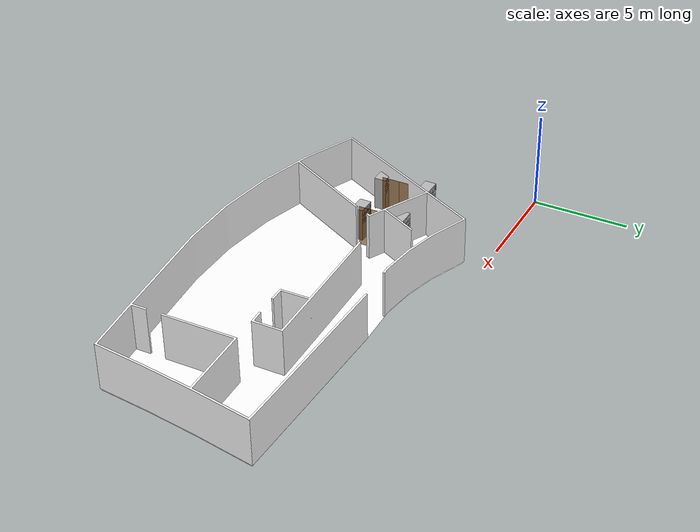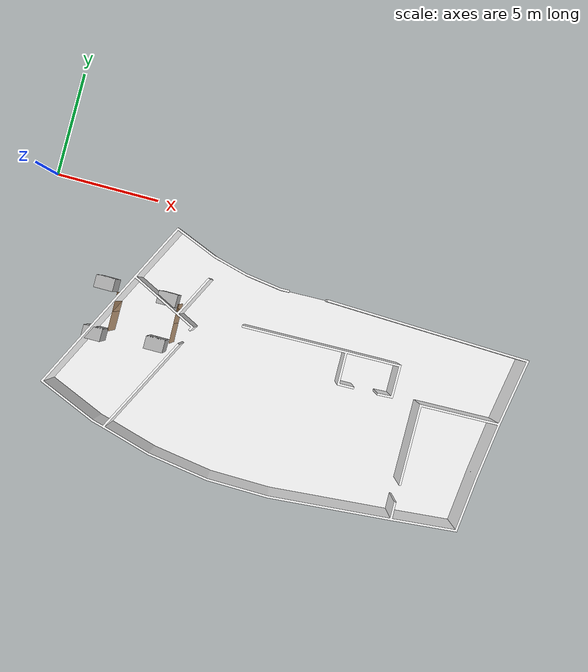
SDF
<sdf version="1.7">
  <world name="sim_world">
    <physics name="10ms" type="ode">
      <max_step_size>0.01</max_step_size>
      <real_time_factor>1.0</real_time_factor>
    </physics>
    <plugin filename="libgz-sim-physics-system.so" name="gz::sim::systems::Physics">
    </plugin>
    <plugin filename="libgz-sim-user-commands-system.so" name="gz::sim::systems::UserCommands">
    </plugin>
    <plugin filename="libgz-sim-scene-broadcaster-system.so" name="gz::sim::systems::SceneBroadcaster">
    </plugin>
    <plugin filename="libdoor.so" name="door">
    </plugin>
    <plugin filename="liblift.so" name="lift">
    </plugin>
    <scene>
      <ambient>1 1 1</ambient>
      <background>0.8 0.8 0.8</background>
      <grid>false</grid>
    </scene>
    <gui fullscreen="0">
      <window>
        <width>1000</width>
        <height>845</height>
        <style material_theme="Light" material_primary="DeepOrange" material_accent="LightBlue" toolbar_color_light="#f3f3f3" toolbar_text_color_light="#111111" toolbar_color_dark="#414141" toolbar_text_color_dark="#f3f3f3" plugin_toolbar_color_light="#bbdefb" plugin_toolbar_text_color_light="#111111" plugin_toolbar_color_dark="#607d8b" plugin_toolbar_text_color_dark="#eeeeee" />
        <menus>
          <drawer default="false">
          </drawer>
        </menus>
      </window>
      <plugin filename="MinimalScene" name="3D View">
        <gz-gui>
          <title>3D View</title>
          <property type="bool" key="showTitleBar">false</property>
          <property type="string" key="state">docked</property>
        </gz-gui>
        <engine>ogre2</engine>
        <scene>scene</scene>
        <ambient_light>0.4 0.4 0.4</ambient_light>
        <background_color>0.8 0.8 0.8</background_color>
        <camera_pose>6.171511976051526 -25.667290171069755 10 0 0.6 1.57</camera_pose>
      </plugin>
      <plugin filename="EntityContextMenuPlugin" name="Entity context menu">
        <gz-gui>
          <property key="state" type="string">floating</property>
          <property key="width" type="double">5</property>
          <property key="height" type="double">5</property>
          <property key="showTitleBar" type="bool">false</property>
        </gz-gui>
      </plugin>
      <plugin filename="GzSceneManager" name="Scene Manager">
        <gz-gui>
          <property key="resizable" type="bool">false</property>
          <property key="width" type="double">5</property>
          <property key="height" type="double">5</property>
          <property key="state" type="string">floating</property>
          <property key="showTitleBar" type="bool">false</property>
        </gz-gui>
      </plugin>
      <plugin filename="InteractiveViewControl" name="Interactive view control">
        <gz-gui>
          <property key="resizable" type="bool">false</property>
          <property key="width" type="double">5</property>
          <property key="height" type="double">5</property>
          <property key="state" type="string">floating</property>
          <property key="showTitleBar" type="bool">false</property>
        </gz-gui>
      </plugin>
      <plugin filename="CameraTracking" name="Camera Tracking">
        <gz-gui>
          <property key="resizable" type="bool">false</property>
          <property key="width" type="double">5</property>
          <property key="height" type="double">5</property>
          <property key="state" type="string">floating</property>
          <property key="showTitleBar" type="bool">false</property>
        </gz-gui>
      </plugin>
      <plugin filename="MarkerManager" name="Marker manager">
        <gz-gui>
          <property key="resizable" type="bool">false</property>
          <property key="width" type="double">5</property>
          <property key="height" type="double">5</property>
          <property key="state" type="string">floating</property>
          <property key="showTitleBar" type="bool">false</property>
        </gz-gui>
      </plugin>
      <plugin filename="SelectEntities" name="Select Entities">
        <gz-gui>
          <property key="resizable" type="bool">false</property>
          <property key="width" type="double">5</property>
          <property key="height" type="double">5</property>
          <property key="state" type="string">floating</property>
          <property key="showTitleBar" type="bool">false</property>
        </gz-gui>
      </plugin>
      <plugin filename="Spawn" name="Spawn Entities">
        <gz-gui>
          <property key="resizable" type="bool">false</property>
          <property key="width" type="double">5</property>
          <property key="height" type="double">5</property>
          <property key="state" type="string">floating</property>
          <property key="showTitleBar" type="bool">false</property>
        </gz-gui>
      </plugin>
      <plugin filename="VisualizationCapabilities" name="Visualization Capabilities">
        <gz-gui>
          <property key="resizable" type="bool">false</property>
          <property key="width" type="double">5</property>
          <property key="height" type="double">5</property>
          <property key="state" type="string">floating</property>
          <property key="showTitleBar" type="bool">false</property>
        </gz-gui>
      </plugin>
      <plugin filename="WorldControl" name="World control">
        <gz-gui>
          <title>World control</title>
          <property type="bool" key="showTitleBar">false</property>
          <property type="bool" key="resizable">false</property>
          <property type="double" key="height">72</property>
          <property type="double" key="z">1</property>
          <property type="string" key="state">floating</property>
          <anchors target="3D View">
            <line own="left" target="left" />
            <line own="bottom" target="bottom" />
          </anchors>
        </gz-gui>
        <play_pause>true</play_pause>
        <step>true</step>
        <start_paused>true</start_paused>
        <use_event>true</use_event>
      </plugin>
      <plugin filename="WorldStats" name="World stats">
        <gz-gui>
          <title>World stats</title>
          <property type="bool" key="showTitleBar">false</property>
          <property type="bool" key="resizable">false</property>
          <property type="double" key="height">110</property>
          <property type="double" key="width">290</property>
          <property type="double" key="z">1</property>
          <property type="string" key="state">floating</property>
          <anchors target="3D View">
            <line own="right" target="right" />
            <line own="bottom" target="bottom" />
          </anchors>
        </gz-gui>
        <sim_time>true</sim_time>
        <real_time>true</real_time>
        <real_time_factor>true</real_time_factor>
        <iterations>true</iterations>
      </plugin>
      <plugin filename="Shapes" name="Shapes">
        <gz-gui>
          <property key="resizable" type="bool">false</property>
          <property key="x" type="double">0</property>
          <property key="y" type="double">0</property>
          <property key="width" type="double">250</property>
          <property key="height" type="double">50</property>
          <property key="state" type="string">floating</property>
          <property key="showTitleBar" type="bool">false</property>
          <property key="cardBackground" type="string">#666666</property>
        </gz-gui>
      </plugin>
      <plugin filename="Lights" name="Lights">
        <gz-gui>
          <property key="resizable" type="bool">false</property>
          <property key="x" type="double">250</property>
          <property key="y" type="double">0</property>
          <property key="width" type="double">150</property>
          <property key="height" type="double">50</property>
          <property key="state" type="string">floating</property>
          <property key="showTitleBar" type="bool">false</property>
          <property key="cardBackground" type="string">#666666</property>
        </gz-gui>
      </plugin>
      <plugin filename="TransformControl" name="Transform control">
        <gz-gui>
          <property key="resizable" type="bool">false</property>
          <property key="x" type="double">0</property>
          <property key="y" type="double">50</property>
          <property key="width" type="double">250</property>
          <property key="height" type="double">50</property>
          <property key="state" type="string">floating</property>
          <property key="showTitleBar" type="bool">false</property>
          <property key="cardBackground" type="string">#777777</property>
        </gz-gui>
      </plugin>
      <plugin filename="Screenshot" name="Screenshot">
        <gz-gui>
          <property key="resizable" type="bool">false</property>
          <property key="x" type="double">250</property>
          <property key="y" type="double">50</property>
          <property key="width" type="double">50</property>
          <property key="height" type="double">50</property>
          <property key="state" type="string">floating</property>
          <property key="showTitleBar" type="bool">false</property>
          <property key="cardBackground" type="string">#777777</property>
        </gz-gui>
      </plugin>
      <plugin filename="CopyPaste" name="CopyPaste">
        <gz-gui>
          <property key="resizable" type="bool">false</property>
          <property key="x" type="double">300</property>
          <property key="y" type="double">50</property>
          <property key="width" type="double">100</property>
          <property key="height" type="double">50</property>
          <property key="state" type="string">floating</property>
          <property key="showTitleBar" type="bool">false</property>
          <property key="cardBackground" type="string">#777777</property>
        </gz-gui>
      </plugin>
      <plugin filename="ComponentInspector" name="Component inspector">
        <gz-gui>
          <property type="bool" key="showTitleBar">false</property>
          <property type="string" key="state">docked</property>
        </gz-gui>
      </plugin>
      <plugin filename="EntityTree" name="Entity tree">
        <gz-gui>
          <property type="bool" key="showTitleBar">false</property>
          <property type="string" key="state">docked</property>
        </gz-gui>
      </plugin>
      <plugin filename="toggle_charging" name="toggle_charging" />
      <plugin name="toggle_floors" filename="toggle_floors">
        <floor name="L1" model_name="building_L1">
          <model name="VendingMachine" />
          <model name="VendingMachine_2" />
          <model name="VendingMachine_3" />
          <model name="VendingMachine_4" />
          <model name="negative_motion" />
          <model name="positive_motion" />
        </floor>
      </plugin>
    </gui>
    <light type="directional" name="sun">
      <cast_shadows>true</cast_shadows>
      <pose>0 0 10 0 0 0</pose>
      <diffuse>1 1 1 1</diffuse>
      <specular>0.2 0.2 0.2 1</specular>
      <attenuation>
        <range>1000</range>
        <constant>0.09</constant>
        <linear>0.001</linear>
        <quadratic>0.001</quadratic>
      </attenuation>
      <direction>-0.5 0.1 -0.9</direction>
    </light>
    <include>
      <name>VendingMachine</name>
      <uri>model://VendingMachine</uri>
      <pose>3.791648278030986 -4.445018096578708 0.0 0 0 -3.1416</pose>
      <static>True</static>
    </include>
    <include>
      <name>VendingMachine_2</name>
      <uri>model://VendingMachine</uri>
      <pose>3.807879180668895 -6.857222020080024 0.0 0 0 -3.1416</pose>
      <static>True</static>
    </include>
    <include>
      <name>VendingMachine_3</name>
      <uri>model://VendingMachine</uri>
      <pose>6.801781633541549 -4.414379988228498 0.0 0 0 -3.1416</pose>
      <static>True</static>
    </include>
    <include>
      <name>VendingMachine_4</name>
      <uri>model://VendingMachine</uri>
      <pose>6.7692590383682125 -6.61959431067334 0.0 0 0 -3.1416</pose>
      <static>True</static>
    </include>
    <model name="negative_motion">
      <pose>7.442415968558777 -5.432580376744042 0.0 0 0 1.596654026471199</pose>
      <link name="right">
        <pose>0.46965257697674084 0 1.11 0 0 0</pose>
        <visual name="right_visual">
          <geometry>
            <box>
              <size>0.9293051539534817 0.03 2.2</size>
            </box>
          </geometry>
          <material>
            <ambient>0.5 0.25 0 0.6</ambient>
            <diffuse>0.5 0.25 0 0.6</diffuse>
            <pbr>
              <metal>
                <metalness>0.0</metalness>
              </metal>
            </pbr>
          </material>
        </visual>
        <collision name="right_collision">
          <geometry>
            <box>
              <size>0.9293051539534817 0.03 2.2</size>
            </box>
          </geometry>
          <surface>
            <contact>
              <collide_bitmask>0x02</collide_bitmask>
            </contact>
          </surface>
        </collision>
        <inertial>
          <mass>50.0</mass>
          <inertia>
            <ixx>20.17041666666667</ixx>
            <iyy>23.765033621518775</iyy>
            <izz>3.6021169548521015</izz>
          </inertia>
        </inertial>
      </link>
      <joint name="right_joint" type="revolute">
        <parent>world</parent>
        <child>right</child>
        <axis>
          <xyz>0 0 1</xyz>
          <limit>
            <lower>0</lower>
            <upper>1.57</upper>
          </limit>
        </axis>
        <pose>0.46965257697674084 0 0 0 0 0</pose>
      </joint>
      <link name="left">
        <pose>-0.46965257697674084 0 1.11 0 0 0</pose>
        <visual name="left_visual">
          <geometry>
            <box>
              <size>0.9293051539534817 0.03 2.2</size>
            </box>
          </geometry>
          <material>
            <ambient>0.5 0.25 0 0.6</ambient>
            <diffuse>0.5 0.25 0 0.6</diffuse>
            <pbr>
              <metal>
                <metalness>0.0</metalness>
              </metal>
            </pbr>
          </material>
        </visual>
        <collision name="left_collision">
          <geometry>
            <box>
              <size>0.9293051539534817 0.03 2.2</size>
            </box>
          </geometry>
          <surface>
            <contact>
              <collide_bitmask>0x02</collide_bitmask>
            </contact>
          </surface>
        </collision>
        <inertial>
          <mass>50.0</mass>
          <inertia>
            <ixx>20.17041666666667</ixx>
            <iyy>23.765033621518775</iyy>
            <izz>3.6021169548521015</izz>
          </inertia>
        </inertial>
      </link>
      <joint name="left_joint" type="revolute">
        <parent>world</parent>
        <child>left</child>
        <axis>
          <xyz>0 0 1</xyz>
          <limit>
            <lower>-1.57</lower>
            <upper>0</upper>
          </limit>
        </axis>
        <pose>-0.46965257697674084 0 0 0 0 0</pose>
      </joint>
      <plugin name="register_component" filename="libregister_component.so">
        <component name="Door">
          <v_max_door>0.5</v_max_door>
          <a_max_door>0.3</a_max_door>
          <a_nom_door>0.15</a_nom_door>
          <dx_min_door>0.01</dx_min_door>
          <f_max_door>500.0</f_max_door>
          <ros_interface>true</ros_interface>
          <door name="negative_motion" type="DoubleSwingDoor" left_joint_name="left_joint" right_joint_name="right_joint" />
        </component>
      </plugin>
    </model>
    <model name="positive_motion">
      <pose>4.560670876610997 -5.6187494378998295 0.0 0 0 -1.5620784649824977</pose>
      <link name="right">
        <pose>0.4654555378216558 0 1.11 0 0 0</pose>
        <visual name="right_visual">
          <geometry>
            <box>
              <size>0.9209110756433115 0.03 2.2</size>
            </box>
          </geometry>
          <material>
            <ambient>0.5 0.25 0 0.6</ambient>
            <diffuse>0.5 0.25 0 0.6</diffuse>
            <pbr>
              <metal>
                <metalness>0.0</metalness>
              </metal>
            </pbr>
          </material>
        </visual>
        <collision name="right_collision">
          <geometry>
            <box>
              <size>0.9209110756433115 0.03 2.2</size>
            </box>
          </geometry>
          <surface>
            <contact>
              <collide_bitmask>0x02</collide_bitmask>
            </contact>
          </surface>
        </collision>
        <inertial>
          <mass>50.0</mass>
          <inertia>
            <ixx>20.17041666666667</ixx>
            <iyy>23.700321705177174</iyy>
            <izz>3.5374050385105047</izz>
          </inertia>
        </inertial>
      </link>
      <joint name="right_joint" type="revolute">
        <parent>world</parent>
        <child>right</child>
        <axis>
          <xyz>0 0 -1</xyz>
          <limit>
            <lower>0</lower>
            <upper>1.57</upper>
          </limit>
        </axis>
        <pose>0.4654555378216558 0 0 0 0 0</pose>
      </joint>
      <link name="left">
        <pose>-0.4654555378216558 0 1.11 0 0 0</pose>
        <visual name="left_visual">
          <geometry>
            <box>
              <size>0.9209110756433115 0.03 2.2</size>
            </box>
          </geometry>
          <material>
            <ambient>0.5 0.25 0 0.6</ambient>
            <diffuse>0.5 0.25 0 0.6</diffuse>
            <pbr>
              <metal>
                <metalness>0.0</metalness>
              </metal>
            </pbr>
          </material>
        </visual>
        <collision name="left_collision">
          <geometry>
            <box>
              <size>0.9209110756433115 0.03 2.2</size>
            </box>
          </geometry>
          <surface>
            <contact>
              <collide_bitmask>0x02</collide_bitmask>
            </contact>
          </surface>
        </collision>
        <inertial>
          <mass>50.0</mass>
          <inertia>
            <ixx>20.17041666666667</ixx>
            <iyy>23.700321705177174</iyy>
            <izz>3.5374050385105047</izz>
          </inertia>
        </inertial>
      </link>
      <joint name="left_joint" type="revolute">
        <parent>world</parent>
        <child>left</child>
        <axis>
          <xyz>0 0 -1</xyz>
          <limit>
            <lower>-1.57</lower>
            <upper>0</upper>
          </limit>
        </axis>
        <pose>-0.4654555378216558 0 0 0 0 0</pose>
      </joint>
      <plugin name="register_component" filename="libregister_component.so">
        <component name="Door">
          <v_max_door>0.5</v_max_door>
          <a_max_door>0.3</a_max_door>
          <a_nom_door>0.15</a_nom_door>
          <dx_min_door>0.01</dx_min_door>
          <f_max_door>500.0</f_max_door>
          <ros_interface>true</ros_interface>
          <door name="positive_motion" type="DoubleSwingDoor" left_joint_name="left_joint" right_joint_name="right_joint" />
        </component>
      </plugin>
    </model>
    <include>
      <name>building_L1</name>
      <uri>model://building_L1</uri>
      <pose>0 0 0.0 0 0 0</pose>
    </include>
    <rmf_charger_waypoints name="charger_waypoints" />
  </world>
</sdf>

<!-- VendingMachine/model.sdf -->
<sdf version="1.6">
  <model name="VendingMachine">
    <link name="body">
      <pose>0 0 0 0 0 0</pose>

      <visual name="visual">
        <geometry>
          <mesh>
            <uri>model://VendingMachine/meshes/vend.obj</uri>
          </mesh>
        </geometry>
      </visual>

      <collision name="collision">
        <geometry>
          <mesh>
            <uri>model://VendingMachine/meshes/vend.obj</uri>
          </mesh>
        </geometry>
      </collision>

    </link>
  </model>
</sdf>

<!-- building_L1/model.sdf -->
<sdf version="1.7">
  <model name="building_L1">
    <static>true</static>
    <link name="floor_1">
      <visual name="visual">
        <geometry>
          <mesh>
            <uri>model://building_L1/meshes/floor_1.obj</uri>
          </mesh>
        </geometry>
        <material>
          <diffuse>1.0 1.0 1.0 1.0</diffuse>
          <specular>0.1 0.1 0.1 1.0</specular>
          <pbr>
            <metal>
              <metalness>0.0</metalness>
              <albedo_map>model://building_L1/meshes/blue_linoleum.png</albedo_map>
            </metal>
          </pbr>
        </material>
      </visual>
      <collision name="collision">
        <geometry>
          <mesh>
            <uri>model://building_L1/meshes/floor_1.obj</uri>
          </mesh>
        </geometry>
        <surface>
          <contact>
            <collide_bitmask>0x01</collide_bitmask>
          </contact>
        </surface>
      </collision>
    </link>
    <link name="wall_1">
      <visual name="wall_1">
        <geometry>
          <mesh>
            <uri>model://building_L1/meshes/wall_1.obj</uri>
          </mesh>
        </geometry>
        <material>
          <diffuse>1.0 1.0 1.0 1.0</diffuse>
          <specular>0.1 0.1 0.1 1.0</specular>
          <pbr>
            <metal>
              <metalness>0.0</metalness>
              <albedo_map>model://building_L1/meshes/default.png</albedo_map>
            </metal>
          </pbr>
        </material>
      </visual>
      <collision name="collision">
        <geometry>
          <mesh>
            <uri>model://building_L1/meshes/wall_1.obj</uri>
          </mesh>
        </geometry>
        <surface>
          <contact>
            <collide_bitmask>0x01</collide_bitmask>
          </contact>
        </surface>
      </collision>
    </link>
  </model>
</sdf>
